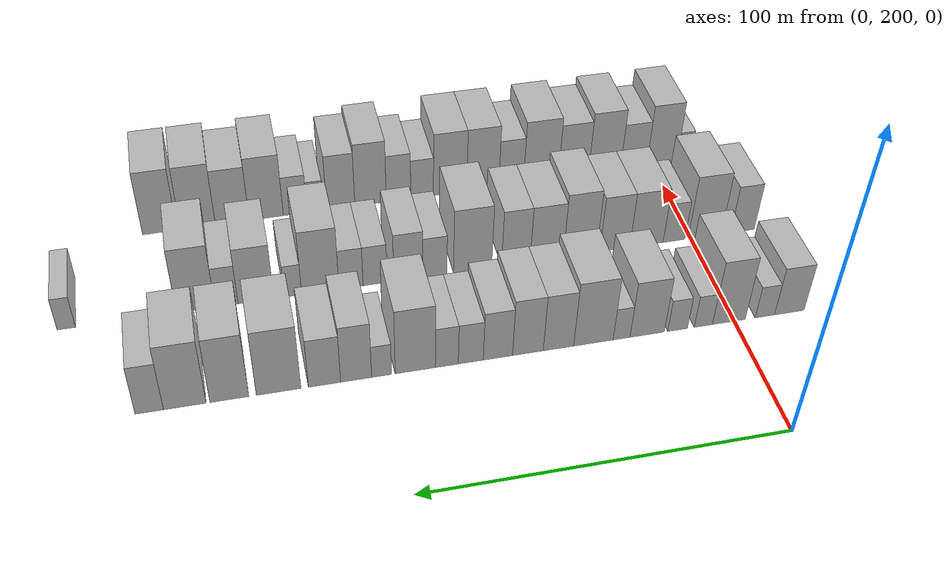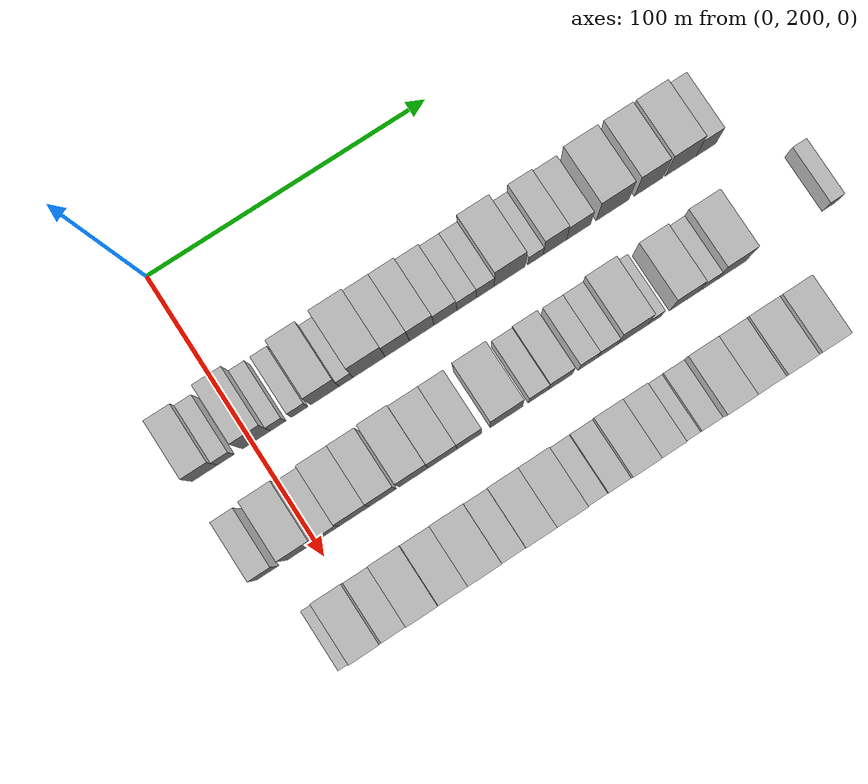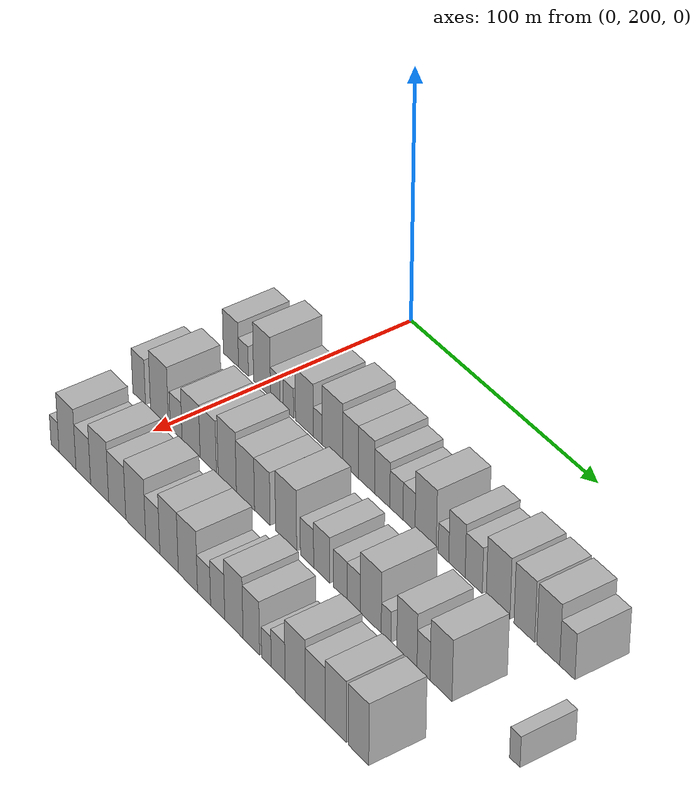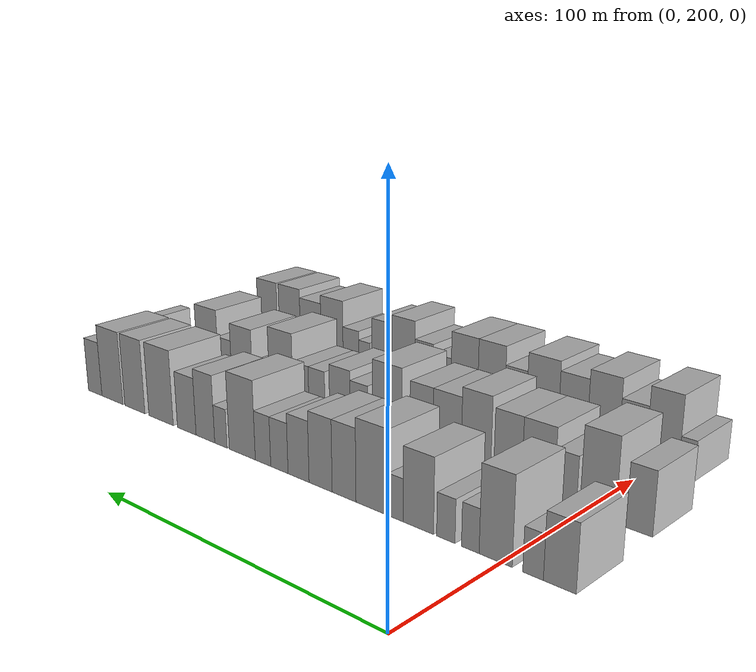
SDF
<sdf version="1.6">
 <world name="default">
  <model name="building_67">
   <static>1</static>
   <pose>50.0000 183.5622 0 0.000000 0.000000 0.000000</pose>
   <link name="link">
    <pose>0 0 9.00 0 0 0</pose>
    <collision name="collision"><geometry><box><size>20.0000 8.9231 18.0000</size></box></geometry></collision>
    <visual name="visual">
     <cast_shadows>0</cast_shadows>
     <geometry><box><size>20.0000 8.9231 18.0000</size></box></geometry>
     <material>
      <script>
       <uri>model://HANNAS_wall/materials/scripts</uri>
       <uri>model://HANNAS_wall/materials/textures</uri>
       <name>vrc/HANNAS_wall</name>
      </script>
     </material>
    </visual>
   </link>
  </model>
  <model name="building_68">
   <static>1</static>
   <pose>50.0000 190.9222 0 0.000000 0.000000 0.000000</pose>
   <link name="link">
    <pose>0 0 6.00 0 0 0</pose>
    <collision name="collision"><geometry><box><size>20.0000 5.7970 12.0000</size></box></geometry></collision>
    <visual name="visual">
     <cast_shadows>0</cast_shadows>
     <geometry><box><size>20.0000 5.7970 12.0000</size></box></geometry>
     <material>
      <script>
       <uri>model://HANNAS_wall/materials/scripts</uri>
       <uri>model://HANNAS_wall/materials/textures</uri>
       <name>vrc/HANNAS_wall</name>
      </script>
     </material>
    </visual>
   </link>
  </model>
  <model name="building_69">
   <static>1</static>
   <pose>50.0000 201.7102 0 0.000000 0.000000 0.000000</pose>
   <link name="link">
    <pose>0 0 12.00 0 0 0</pose>
    <collision name="collision"><geometry><box><size>20.0000 9.7790 24.0000</size></box></geometry></collision>
    <visual name="visual">
     <cast_shadows>0</cast_shadows>
     <geometry><box><size>20.0000 9.7790 24.0000</size></box></geometry>
     <material>
      <script>
       <uri>model://HANNAS_wall/materials/scripts</uri>
       <uri>model://HANNAS_wall/materials/textures</uri>
       <name>vrc/HANNAS_wall</name>
      </script>
     </material>
    </visual>
   </link>
  </model>
  <model name="building_70">
   <static>1</static>
   <pose>50.0000 209.2915 0 0.000000 0.000000 0.000000</pose>
   <link name="link">
    <pose>0 0 6.00 0 0 0</pose>
    <collision name="collision"><geometry><box><size>20.0000 5.3836 12.0000</size></box></geometry></collision>
    <visual name="visual">
     <cast_shadows>0</cast_shadows>
     <geometry><box><size>20.0000 5.3836 12.0000</size></box></geometry>
     <material>
      <script>
       <uri>model://HANNAS_wall/materials/scripts</uri>
       <uri>model://HANNAS_wall/materials/textures</uri>
       <name>vrc/HANNAS_wall</name>
      </script>
     </material>
    </visual>
   </link>
  </model>
  <model name="building_71">
   <static>1</static>
   <pose>50.0000 216.8826 0 0.000000 0.000000 0.000000</pose>
   <link name="link">
    <pose>0 0 6.00 0 0 0</pose>
    <collision name="collision"><geometry><box><size>20.0000 5.7985 12.0000</size></box></geometry></collision>
    <visual name="visual">
     <cast_shadows>0</cast_shadows>
     <geometry><box><size>20.0000 5.7985 12.0000</size></box></geometry>
     <material>
      <script>
       <uri>model://HANNAS_wall/materials/scripts</uri>
       <uri>model://HANNAS_wall/materials/textures</uri>
       <name>vrc/HANNAS_wall</name>
      </script>
     </material>
    </visual>
   </link>
  </model>
  <model name="building_72">
   <static>1</static>
   <pose>50.0000 225.7960 0 0.000000 0.000000 0.000000</pose>
   <link name="link">
    <pose>0 0 10.50 0 0 0</pose>
    <collision name="collision"><geometry><box><size>20.0000 10.0283 21.0000</size></box></geometry></collision>
    <visual name="visual">
     <cast_shadows>0</cast_shadows>
     <geometry><box><size>20.0000 10.0283 21.0000</size></box></geometry>
     <material>
      <script>
       <uri>model://HANNAS_wall/materials/scripts</uri>
       <uri>model://HANNAS_wall/materials/textures</uri>
       <name>vrc/HANNAS_wall</name>
      </script>
     </material>
    </visual>
   </link>
  </model>
  <model name="building_73">
   <static>1</static>
   <pose>50.0000 233.2666 0 0.000000 0.000000 0.000000</pose>
   <link name="link">
    <pose>0 0 6.00 0 0 0</pose>
    <collision name="collision"><geometry><box><size>20.0000 4.9128 12.0000</size></box></geometry></collision>
    <visual name="visual">
     <cast_shadows>0</cast_shadows>
     <geometry><box><size>20.0000 4.9128 12.0000</size></box></geometry>
     <material>
      <script>
       <uri>model://HANNAS_wall/materials/scripts</uri>
       <uri>model://HANNAS_wall/materials/textures</uri>
       <name>vrc/HANNAS_wall</name>
      </script>
     </material>
    </visual>
   </link>
  </model>
  <model name="building_74">
   <static>1</static>
   <pose>50.0000 241.4096 0 0.000000 0.000000 0.000000</pose>
   <link name="link">
    <pose>0 0 12.00 0 0 0</pose>
    <collision name="collision"><geometry><box><size>20.0000 11.3731 24.0000</size></box></geometry></collision>
    <visual name="visual">
     <cast_shadows>0</cast_shadows>
     <geometry><box><size>20.0000 11.3731 24.0000</size></box></geometry>
     <material>
      <script>
       <uri>model://HANNAS_wall/materials/scripts</uri>
       <uri>model://HANNAS_wall/materials/textures</uri>
       <name>vrc/HANNAS_wall</name>
      </script>
     </material>
    </visual>
   </link>
  </model>
  <model name="building_75">
   <static>1</static>
   <pose>50.0000 251.4400 0 0.000000 0.000000 0.000000</pose>
   <link name="link">
    <pose>0 0 10.50 0 0 0</pose>
    <collision name="collision"><geometry><box><size>20.0000 8.6877 21.0000</size></box></geometry></collision>
    <visual name="visual">
     <cast_shadows>0</cast_shadows>
     <geometry><box><size>20.0000 8.6877 21.0000</size></box></geometry>
     <material>
      <script>
       <uri>model://HANNAS_wall/materials/scripts</uri>
       <uri>model://HANNAS_wall/materials/textures</uri>
       <name>vrc/HANNAS_wall</name>
      </script>
     </material>
    </visual>
   </link>
  </model>
  <model name="building_76">
   <static>1</static>
   <pose>50.0000 260.1631 0 0.000000 0.000000 0.000000</pose>
   <link name="link">
    <pose>0 0 10.50 0 0 0</pose>
    <collision name="collision"><geometry><box><size>20.0000 8.7585 21.0000</size></box></geometry></collision>
    <visual name="visual">
     <cast_shadows>0</cast_shadows>
     <geometry><box><size>20.0000 8.7585 21.0000</size></box></geometry>
     <material>
      <script>
       <uri>model://HANNAS_wall/materials/scripts</uri>
       <uri>model://HANNAS_wall/materials/textures</uri>
       <name>vrc/HANNAS_wall</name>
      </script>
     </material>
    </visual>
   </link>
  </model>
  <model name="building_77">
   <static>1</static>
   <pose>50.0000 268.6544 0 0.000000 0.000000 0.000000</pose>
   <link name="link">
    <pose>0 0 9.00 0 0 0</pose>
    <collision name="collision"><geometry><box><size>20.0000 8.2241 18.0000</size></box></geometry></collision>
    <visual name="visual">
     <cast_shadows>0</cast_shadows>
     <geometry><box><size>20.0000 8.2241 18.0000</size></box></geometry>
     <material>
      <script>
       <uri>model://HANNAS_wall/materials/scripts</uri>
       <uri>model://HANNAS_wall/materials/textures</uri>
       <name>vrc/HANNAS_wall</name>
      </script>
     </material>
    </visual>
   </link>
  </model>
  <model name="building_78">
   <static>1</static>
   <pose>50.0000 276.2596 0 0.000000 0.000000 0.000000</pose>
   <link name="link">
    <pose>0 0 7.50 0 0 0</pose>
    <collision name="collision"><geometry><box><size>20.0000 6.9864 15.0000</size></box></geometry></collision>
    <visual name="visual">
     <cast_shadows>0</cast_shadows>
     <geometry><box><size>20.0000 6.9864 15.0000</size></box></geometry>
     <material>
      <script>
       <uri>model://HANNAS_wall/materials/scripts</uri>
       <uri>model://HANNAS_wall/materials/textures</uri>
       <name>vrc/HANNAS_wall</name>
      </script>
     </material>
    </visual>
   </link>
  </model>
  <model name="building_79">
   <static>1</static>
   <pose>50.0000 282.9434 0 0.000000 0.000000 0.000000</pose>
   <link name="link">
    <pose>0 0 7.50 0 0 0</pose>
    <collision name="collision"><geometry><box><size>20.0000 6.3812 15.0000</size></box></geometry></collision>
    <visual name="visual">
     <cast_shadows>0</cast_shadows>
     <geometry><box><size>20.0000 6.3812 15.0000</size></box></geometry>
     <material>
      <script>
       <uri>model://HANNAS_wall/materials/scripts</uri>
       <uri>model://HANNAS_wall/materials/textures</uri>
       <name>vrc/HANNAS_wall</name>
      </script>
     </material>
    </visual>
   </link>
  </model>
  <model name="building_80">
   <static>1</static>
   <pose>50.0000 291.6882 0 0.000000 0.000000 0.000000</pose>
   <link name="link">
    <pose>0 0 12.00 0 0 0</pose>
    <collision name="collision"><geometry><box><size>20.0000 11.1082 24.0000</size></box></geometry></collision>
    <visual name="visual">
     <cast_shadows>0</cast_shadows>
     <geometry><box><size>20.0000 11.1082 24.0000</size></box></geometry>
     <material>
      <script>
       <uri>model://HANNAS_wall/materials/scripts</uri>
       <uri>model://HANNAS_wall/materials/textures</uri>
       <name>vrc/HANNAS_wall</name>
      </script>
     </material>
    </visual>
   </link>
  </model>
  <model name="building_81">
   <static>1</static>
   <pose>50.0000 300.9695 0 0.000000 0.000000 0.000000</pose>
   <link name="link">
    <pose>0 0 6.00 0 0 0</pose>
    <collision name="collision"><geometry><box><size>20.0000 5.4544 12.0000</size></box></geometry></collision>
    <visual name="visual">
     <cast_shadows>0</cast_shadows>
     <geometry><box><size>20.0000 5.4544 12.0000</size></box></geometry>
     <material>
      <script>
       <uri>model://HANNAS_wall/materials/scripts</uri>
       <uri>model://HANNAS_wall/materials/textures</uri>
       <name>vrc/HANNAS_wall</name>
      </script>
     </material>
    </visual>
   </link>
  </model>
  <model name="building_82">
   <static>1</static>
   <pose>50.0000 307.9284 0 0.000000 0.000000 0.000000</pose>
   <link name="link">
    <pose>0 0 10.50 0 0 0</pose>
    <collision name="collision"><geometry><box><size>20.0000 8.4634 21.0000</size></box></geometry></collision>
    <visual name="visual">
     <cast_shadows>0</cast_shadows>
     <geometry><box><size>20.0000 8.4634 21.0000</size></box></geometry>
     <material>
      <script>
       <uri>model://HANNAS_wall/materials/scripts</uri>
       <uri>model://HANNAS_wall/materials/textures</uri>
       <name>vrc/HANNAS_wall</name>
      </script>
     </material>
    </visual>
   </link>
  </model>
  <model name="building_83">
   <static>1</static>
   <pose>50.0000 316.5279 0 0.000000 0.000000 0.000000</pose>
   <link name="link">
    <pose>0 0 9.00 0 0 0</pose>
    <collision name="collision"><geometry><box><size>20.0000 8.7357 18.0000</size></box></geometry></collision>
    <visual name="visual">
     <cast_shadows>0</cast_shadows>
     <geometry><box><size>20.0000 8.7357 18.0000</size></box></geometry>
     <material>
      <script>
       <uri>model://HANNAS_wall/materials/scripts</uri>
       <uri>model://HANNAS_wall/materials/textures</uri>
       <name>vrc/HANNAS_wall</name>
      </script>
     </material>
    </visual>
   </link>
  </model>
  <model name="building_84">
   <static>1</static>
   <pose>50.0000 328.8622 0 0.000000 0.000000 0.000000</pose>
   <link name="link">
    <pose>0 0 12.00 0 0 0</pose>
    <collision name="collision"><geometry><box><size>20.0000 11.9328 24.0000</size></box></geometry></collision>
    <visual name="visual">
     <cast_shadows>0</cast_shadows>
     <geometry><box><size>20.0000 11.9328 24.0000</size></box></geometry>
     <material>
      <script>
       <uri>model://HANNAS_wall/materials/scripts</uri>
       <uri>model://HANNAS_wall/materials/textures</uri>
       <name>vrc/HANNAS_wall</name>
      </script>
     </material>
    </visual>
   </link>
  </model>
  <model name="building_85">
   <static>1</static>
   <pose>50.0000 341.9763 0 0.000000 0.000000 0.000000</pose>
   <link name="link">
    <pose>0 0 12.00 0 0 0</pose>
    <collision name="collision"><geometry><box><size>20.0000 10.2955 24.0000</size></box></geometry></collision>
    <visual name="visual">
     <cast_shadows>0</cast_shadows>
     <geometry><box><size>20.0000 10.2955 24.0000</size></box></geometry>
     <material>
      <script>
       <uri>model://HANNAS_wall/materials/scripts</uri>
       <uri>model://HANNAS_wall/materials/textures</uri>
       <name>vrc/HANNAS_wall</name>
      </script>
     </material>
    </visual>
   </link>
  </model>
  <model name="building_86">
   <static>1</static>
   <pose>50.0000 353.7184 0 0.000000 0.000000 0.000000</pose>
   <link name="link">
    <pose>0 0 12.00 0 0 0</pose>
    <collision name="collision"><geometry><box><size>20.0000 11.1886 24.0000</size></box></geometry></collision>
    <visual name="visual">
     <cast_shadows>0</cast_shadows>
     <geometry><box><size>20.0000 11.1886 24.0000</size></box></geometry>
     <material>
      <script>
       <uri>model://HANNAS_wall/materials/scripts</uri>
       <uri>model://HANNAS_wall/materials/textures</uri>
       <name>vrc/HANNAS_wall</name>
      </script>
     </material>
    </visual>
   </link>
  </model>
  <model name="building_87">
   <static>1</static>
   <pose>50.0000 363.0064 0 0.000000 0.000000 0.000000</pose>
   <link name="link">
    <pose>0 0 9.00 0 0 0</pose>
    <collision name="collision"><geometry><box><size>20.0000 7.3875 18.0000</size></box></geometry></collision>
    <visual name="visual">
     <cast_shadows>0</cast_shadows>
     <geometry><box><size>20.0000 7.3875 18.0000</size></box></geometry>
     <material>
      <script>
       <uri>model://HANNAS_wall/materials/scripts</uri>
       <uri>model://HANNAS_wall/materials/textures</uri>
       <name>vrc/HANNAS_wall</name>
      </script>
     </material>
    </visual>
   </link>
  </model>
  <model name="building_141">
   <static>1</static>
   <pose>85.0000 183.5913 0 0.000000 0.000000 0.000000</pose>
   <link name="link">
    <pose>0 0 9.00 0 0 0</pose>
    <collision name="collision"><geometry><box><size>20.0000 7.5626 18.0000</size></box></geometry></collision>
    <visual name="visual">
     <cast_shadows>0</cast_shadows>
     <geometry><box><size>20.0000 7.5626 18.0000</size></box></geometry>
     <material>
      <script>
       <uri>model://HANNAS_wall/materials/scripts</uri>
       <uri>model://HANNAS_wall/materials/textures</uri>
       <name>vrc/HANNAS_wall</name>
      </script>
     </material>
    </visual>
   </link>
  </model>
  <model name="building_142">
   <static>1</static>
   <pose>85.0000 195.6813 0 0.000000 0.000000 0.000000</pose>
   <link name="link">
    <pose>0 0 12.00 0 0 0</pose>
    <collision name="collision"><geometry><box><size>20.0000 10.6173 24.0000</size></box></geometry></collision>
    <visual name="visual">
     <cast_shadows>0</cast_shadows>
     <geometry><box><size>20.0000 10.6173 24.0000</size></box></geometry>
     <material>
      <script>
       <uri>model://HANNAS_wall/materials/scripts</uri>
       <uri>model://HANNAS_wall/materials/textures</uri>
       <name>vrc/HANNAS_wall</name>
      </script>
     </material>
    </visual>
   </link>
  </model>
  <model name="building_143">
   <static>1</static>
   <pose>85.0000 205.4375 0 0.000000 0.000000 0.000000</pose>
   <link name="link">
    <pose>0 0 7.50 0 0 0</pose>
    <collision name="collision"><geometry><box><size>20.0000 6.8949 15.0000</size></box></geometry></collision>
    <visual name="visual">
     <cast_shadows>0</cast_shadows>
     <geometry><box><size>20.0000 6.8949 15.0000</size></box></geometry>
     <material>
      <script>
       <uri>model://HANNAS_wall/materials/scripts</uri>
       <uri>model://HANNAS_wall/materials/textures</uri>
       <name>vrc/HANNAS_wall</name>
      </script>
     </material>
    </visual>
   </link>
  </model>
  <model name="building_144">
   <static>1</static>
   <pose>85.0000 214.1202 0 0.000000 0.000000 0.000000</pose>
   <link name="link">
    <pose>0 0 10.50 0 0 0</pose>
    <collision name="collision"><geometry><box><size>20.0000 10.4705 21.0000</size></box></geometry></collision>
    <visual name="visual">
     <cast_shadows>0</cast_shadows>
     <geometry><box><size>20.0000 10.4705 21.0000</size></box></geometry>
     <material>
      <script>
       <uri>model://HANNAS_wall/materials/scripts</uri>
       <uri>model://HANNAS_wall/materials/textures</uri>
       <name>vrc/HANNAS_wall</name>
      </script>
     </material>
    </visual>
   </link>
  </model>
  <model name="building_145">
   <static>1</static>
   <pose>85.0000 224.0257 0 0.000000 0.000000 0.000000</pose>
   <link name="link">
    <pose>0 0 10.50 0 0 0</pose>
    <collision name="collision"><geometry><box><size>20.0000 9.3406 21.0000</size></box></geometry></collision>
    <visual name="visual">
     <cast_shadows>0</cast_shadows>
     <geometry><box><size>20.0000 9.3406 21.0000</size></box></geometry>
     <material>
      <script>
       <uri>model://HANNAS_wall/materials/scripts</uri>
       <uri>model://HANNAS_wall/materials/textures</uri>
       <name>vrc/HANNAS_wall</name>
      </script>
     </material>
    </visual>
   </link>
  </model>
  <model name="building_146">
   <static>1</static>
   <pose>85.0000 234.8390 0 0.000000 0.000000 0.000000</pose>
   <link name="link">
    <pose>0 0 12.00 0 0 0</pose>
    <collision name="collision"><geometry><box><size>20.0000 10.2858 24.0000</size></box></geometry></collision>
    <visual name="visual">
     <cast_shadows>0</cast_shadows>
     <geometry><box><size>20.0000 10.2858 24.0000</size></box></geometry>
     <material>
      <script>
       <uri>model://HANNAS_wall/materials/scripts</uri>
       <uri>model://HANNAS_wall/materials/textures</uri>
       <name>vrc/HANNAS_wall</name>
      </script>
     </material>
    </visual>
   </link>
  </model>
  <model name="building_147">
   <static>1</static>
   <pose>85.0000 245.0615 0 0.000000 0.000000 0.000000</pose>
   <link name="link">
    <pose>0 0 10.50 0 0 0</pose>
    <collision name="collision"><geometry><box><size>20.0000 10.1592 21.0000</size></box></geometry></collision>
    <visual name="visual">
     <cast_shadows>0</cast_shadows>
     <geometry><box><size>20.0000 10.1592 21.0000</size></box></geometry>
     <material>
      <script>
       <uri>model://HANNAS_wall/materials/scripts</uri>
       <uri>model://HANNAS_wall/materials/textures</uri>
       <name>vrc/HANNAS_wall</name>
      </script>
     </material>
    </visual>
   </link>
  </model>
  <model name="building_148">
   <static>1</static>
   <pose>85.0000 254.4789 0 0.000000 0.000000 0.000000</pose>
   <link name="link">
    <pose>0 0 10.50 0 0 0</pose>
    <collision name="collision"><geometry><box><size>20.0000 8.6756 21.0000</size></box></geometry></collision>
    <visual name="visual">
     <cast_shadows>0</cast_shadows>
     <geometry><box><size>20.0000 8.6756 21.0000</size></box></geometry>
     <material>
      <script>
       <uri>model://HANNAS_wall/materials/scripts</uri>
       <uri>model://HANNAS_wall/materials/textures</uri>
       <name>vrc/HANNAS_wall</name>
      </script>
     </material>
    </visual>
   </link>
  </model>
  <model name="building_149">
   <static>1</static>
   <pose>85.0000 267.5701 0 0.000000 0.000000 0.000000</pose>
   <link name="link">
    <pose>0 0 12.00 0 0 0</pose>
    <collision name="collision"><geometry><box><size>20.0000 11.5068 24.0000</size></box></geometry></collision>
    <visual name="visual">
     <cast_shadows>0</cast_shadows>
     <geometry><box><size>20.0000 11.5068 24.0000</size></box></geometry>
     <material>
      <script>
       <uri>model://HANNAS_wall/materials/scripts</uri>
       <uri>model://HANNAS_wall/materials/textures</uri>
       <name>vrc/HANNAS_wall</name>
      </script>
     </material>
    </visual>
   </link>
  </model>
  <model name="building_150">
   <static>1</static>
   <pose>85.0000 278.8965 0 0.000000 0.000000 0.000000</pose>
   <link name="link">
    <pose>0 0 7.50 0 0 0</pose>
    <collision name="collision"><geometry><box><size>20.0000 7.1461 15.0000</size></box></geometry></collision>
    <visual name="visual">
     <cast_shadows>0</cast_shadows>
     <geometry><box><size>20.0000 7.1461 15.0000</size></box></geometry>
     <material>
      <script>
       <uri>model://HANNAS_wall/materials/scripts</uri>
       <uri>model://HANNAS_wall/materials/textures</uri>
       <name>vrc/HANNAS_wall</name>
      </script>
     </material>
    </visual>
   </link>
  </model>
  <model name="building_151">
   <static>1</static>
   <pose>85.0000 286.7865 0 0.000000 0.000000 0.000000</pose>
   <link name="link">
    <pose>0 0 9.00 0 0 0</pose>
    <collision name="collision"><geometry><box><size>20.0000 8.6339 18.0000</size></box></geometry></collision>
    <visual name="visual">
     <cast_shadows>0</cast_shadows>
     <geometry><box><size>20.0000 8.6339 18.0000</size></box></geometry>
     <material>
      <script>
       <uri>model://HANNAS_wall/materials/scripts</uri>
       <uri>model://HANNAS_wall/materials/textures</uri>
       <name>vrc/HANNAS_wall</name>
      </script>
     </material>
    </visual>
   </link>
  </model>
  <model name="building_152">
   <static>1</static>
   <pose>85.0000 296.6159 0 0.000000 0.000000 0.000000</pose>
   <link name="link">
    <pose>0 0 7.50 0 0 0</pose>
    <collision name="collision"><geometry><box><size>20.0000 7.0249 15.0000</size></box></geometry></collision>
    <visual name="visual">
     <cast_shadows>0</cast_shadows>
     <geometry><box><size>20.0000 7.0249 15.0000</size></box></geometry>
     <material>
      <script>
       <uri>model://HANNAS_wall/materials/scripts</uri>
       <uri>model://HANNAS_wall/materials/textures</uri>
       <name>vrc/HANNAS_wall</name>
      </script>
     </material>
    </visual>
   </link>
  </model>
  <model name="building_153">
   <static>1</static>
   <pose>85.0000 303.6608 0 0.000000 0.000000 0.000000</pose>
   <link name="link">
    <pose>0 0 7.50 0 0 0</pose>
    <collision name="collision"><geometry><box><size>20.0000 7.0650 15.0000</size></box></geometry></collision>
    <visual name="visual">
     <cast_shadows>0</cast_shadows>
     <geometry><box><size>20.0000 7.0650 15.0000</size></box></geometry>
     <material>
      <script>
       <uri>model://HANNAS_wall/materials/scripts</uri>
       <uri>model://HANNAS_wall/materials/textures</uri>
       <name>vrc/HANNAS_wall</name>
      </script>
     </material>
    </visual>
   </link>
  </model>
  <model name="building_154">
   <static>1</static>
   <pose>85.0000 312.6226 0 0.000000 0.000000 0.000000</pose>
   <link name="link">
    <pose>0 0 12.00 0 0 0</pose>
    <collision name="collision"><geometry><box><size>20.0000 10.8585 24.0000</size></box></geometry></collision>
    <visual name="visual">
     <cast_shadows>0</cast_shadows>
     <geometry><box><size>20.0000 10.8585 24.0000</size></box></geometry>
     <material>
      <script>
       <uri>model://HANNAS_wall/materials/scripts</uri>
       <uri>model://HANNAS_wall/materials/textures</uri>
       <name>vrc/HANNAS_wall</name>
      </script>
     </material>
    </visual>
   </link>
  </model>
  <model name="building_155">
   <static>1</static>
   <pose>85.0000 320.5639 0 0.000000 0.000000 0.000000</pose>
   <link name="link">
    <pose>0 0 6.00 0 0 0</pose>
    <collision name="collision"><geometry><box><size>20.0000 5.0241 12.0000</size></box></geometry></collision>
    <visual name="visual">
     <cast_shadows>0</cast_shadows>
     <geometry><box><size>20.0000 5.0241 12.0000</size></box></geometry>
     <material>
      <script>
       <uri>model://HANNAS_wall/materials/scripts</uri>
       <uri>model://HANNAS_wall/materials/textures</uri>
       <name>vrc/HANNAS_wall</name>
      </script>
     </material>
    </visual>
   </link>
  </model>
  <model name="building_156">
   <static>1</static>
   <pose>85.0000 331.1961 0 0.000000 0.000000 0.000000</pose>
   <link name="link">
    <pose>0 0 10.50 0 0 0</pose>
    <collision name="collision"><geometry><box><size>20.0000 10.2403 21.0000</size></box></geometry></collision>
    <visual name="visual">
     <cast_shadows>0</cast_shadows>
     <geometry><box><size>20.0000 10.2403 21.0000</size></box></geometry>
     <material>
      <script>
       <uri>model://HANNAS_wall/materials/scripts</uri>
       <uri>model://HANNAS_wall/materials/textures</uri>
       <name>vrc/HANNAS_wall</name>
      </script>
     </material>
    </visual>
   </link>
  </model>
  <model name="building_157">
   <static>1</static>
   <pose>85.0000 339.5961 0 0.000000 0.000000 0.000000</pose>
   <link name="link">
    <pose>0 0 7.50 0 0 0</pose>
    <collision name="collision"><geometry><box><size>20.0000 6.5597 15.0000</size></box></geometry></collision>
    <visual name="visual">
     <cast_shadows>0</cast_shadows>
     <geometry><box><size>20.0000 6.5597 15.0000</size></box></geometry>
     <material>
      <script>
       <uri>model://HANNAS_wall/materials/scripts</uri>
       <uri>model://HANNAS_wall/materials/textures</uri>
       <name>vrc/HANNAS_wall</name>
      </script>
     </material>
    </visual>
   </link>
  </model>
  <model name="building_158">
   <static>1</static>
   <pose>85.0000 348.3435 0 0.000000 0.000000 0.000000</pose>
   <link name="link">
    <pose>0 0 12.00 0 0 0</pose>
    <collision name="collision"><geometry><box><size>20.0000 10.9350 24.0000</size></box></geometry></collision>
    <visual name="visual">
     <cast_shadows>0</cast_shadows>
     <geometry><box><size>20.0000 10.9350 24.0000</size></box></geometry>
     <material>
      <script>
       <uri>model://HANNAS_wall/materials/scripts</uri>
       <uri>model://HANNAS_wall/materials/textures</uri>
       <name>vrc/HANNAS_wall</name>
      </script>
     </material>
    </visual>
   </link>
  </model>
  <model name="building_159">
   <static>1</static>
   <pose>85.0000 384.3612 0 0.000000 0.000000 0.000000</pose>
   <link name="link">
    <pose>0 0 6.00 0 0 0</pose>
    <collision name="collision"><geometry><box><size>20.0000 5.0335 12.0000</size></box></geometry></collision>
    <visual name="visual">
     <cast_shadows>0</cast_shadows>
     <geometry><box><size>20.0000 5.0335 12.0000</size></box></geometry>
     <material>
      <script>
       <uri>model://HANNAS_wall/materials/scripts</uri>
       <uri>model://HANNAS_wall/materials/textures</uri>
       <name>vrc/HANNAS_wall</name>
      </script>
     </material>
    </visual>
   </link>
  </model>
  <model name="building_219">
   <static>1</static>
   <pose>120.0000 189.6527 0 0.000000 0.000000 0.000000</pose>
   <link name="link">
    <pose>0 0 6.00 0 0 0</pose>
    <collision name="collision"><geometry><box><size>20.0000 4.8545 12.0000</size></box></geometry></collision>
    <visual name="visual">
     <cast_shadows>0</cast_shadows>
     <geometry><box><size>20.0000 4.8545 12.0000</size></box></geometry>
     <material>
      <script>
       <uri>model://HANNAS_wall/materials/scripts</uri>
       <uri>model://HANNAS_wall/materials/textures</uri>
       <name>vrc/HANNAS_wall</name>
      </script>
     </material>
    </visual>
   </link>
  </model>
  <model name="building_220">
   <static>1</static>
   <pose>120.0000 197.1570 0 0.000000 0.000000 0.000000</pose>
   <link name="link">
    <pose>0 0 12.00 0 0 0</pose>
    <collision name="collision"><geometry><box><size>20.0000 10.1541 24.0000</size></box></geometry></collision>
    <visual name="visual">
     <cast_shadows>0</cast_shadows>
     <geometry><box><size>20.0000 10.1541 24.0000</size></box></geometry>
     <material>
      <script>
       <uri>model://HANNAS_wall/materials/scripts</uri>
       <uri>model://HANNAS_wall/materials/textures</uri>
       <name>vrc/HANNAS_wall</name>
      </script>
     </material>
    </visual>
   </link>
  </model>
  <model name="building_221">
   <static>1</static>
   <pose>120.0000 206.5946 0 0.000000 0.000000 0.000000</pose>
   <link name="link">
    <pose>0 0 9.00 0 0 0</pose>
    <collision name="collision"><geometry><box><size>20.0000 8.7211 18.0000</size></box></geometry></collision>
    <visual name="visual">
     <cast_shadows>0</cast_shadows>
     <geometry><box><size>20.0000 8.7211 18.0000</size></box></geometry>
     <material>
      <script>
       <uri>model://HANNAS_wall/materials/scripts</uri>
       <uri>model://HANNAS_wall/materials/textures</uri>
       <name>vrc/HANNAS_wall</name>
      </script>
     </material>
    </visual>
   </link>
  </model>
  <model name="building_222">
   <static>1</static>
   <pose>120.0000 216.2594 0 0.000000 0.000000 0.000000</pose>
   <link name="link">
    <pose>0 0 12.00 0 0 0</pose>
    <collision name="collision"><geometry><box><size>20.0000 10.6086 24.0000</size></box></geometry></collision>
    <visual name="visual">
     <cast_shadows>0</cast_shadows>
     <geometry><box><size>20.0000 10.6086 24.0000</size></box></geometry>
     <material>
      <script>
       <uri>model://HANNAS_wall/materials/scripts</uri>
       <uri>model://HANNAS_wall/materials/textures</uri>
       <name>vrc/HANNAS_wall</name>
      </script>
     </material>
    </visual>
   </link>
  </model>
  <model name="building_223">
   <static>1</static>
   <pose>120.0000 226.5346 0 0.000000 0.000000 0.000000</pose>
   <link name="link">
    <pose>0 0 10.50 0 0 0</pose>
    <collision name="collision"><geometry><box><size>20.0000 9.9417 21.0000</size></box></geometry></collision>
    <visual name="visual">
     <cast_shadows>0</cast_shadows>
     <geometry><box><size>20.0000 9.9417 21.0000</size></box></geometry>
     <material>
      <script>
       <uri>model://HANNAS_wall/materials/scripts</uri>
       <uri>model://HANNAS_wall/materials/textures</uri>
       <name>vrc/HANNAS_wall</name>
      </script>
     </material>
    </visual>
   </link>
  </model>
  <model name="building_224">
   <static>1</static>
   <pose>120.0000 237.2084 0 0.000000 0.000000 0.000000</pose>
   <link name="link">
    <pose>0 0 12.00 0 0 0</pose>
    <collision name="collision"><geometry><box><size>20.0000 11.4060 24.0000</size></box></geometry></collision>
    <visual name="visual">
     <cast_shadows>0</cast_shadows>
     <geometry><box><size>20.0000 11.4060 24.0000</size></box></geometry>
     <material>
      <script>
       <uri>model://HANNAS_wall/materials/scripts</uri>
       <uri>model://HANNAS_wall/materials/textures</uri>
       <name>vrc/HANNAS_wall</name>
      </script>
     </material>
    </visual>
   </link>
  </model>
  <model name="building_225">
   <static>1</static>
   <pose>120.0000 246.9334 0 0.000000 0.000000 0.000000</pose>
   <link name="link">
    <pose>0 0 9.00 0 0 0</pose>
    <collision name="collision"><geometry><box><size>20.0000 8.0439 18.0000</size></box></geometry></collision>
    <visual name="visual">
     <cast_shadows>0</cast_shadows>
     <geometry><box><size>20.0000 8.0439 18.0000</size></box></geometry>
     <material>
      <script>
       <uri>model://HANNAS_wall/materials/scripts</uri>
       <uri>model://HANNAS_wall/materials/textures</uri>
       <name>vrc/HANNAS_wall</name>
      </script>
     </material>
    </visual>
   </link>
  </model>
  <model name="building_226">
   <static>1</static>
   <pose>120.0000 256.1545 0 0.000000 0.000000 0.000000</pose>
   <link name="link">
    <pose>0 0 12.00 0 0 0</pose>
    <collision name="collision"><geometry><box><size>20.0000 10.3984 24.0000</size></box></geometry></collision>
    <visual name="visual">
     <cast_shadows>0</cast_shadows>
     <geometry><box><size>20.0000 10.3984 24.0000</size></box></geometry>
     <material>
      <script>
       <uri>model://HANNAS_wall/materials/scripts</uri>
       <uri>model://HANNAS_wall/materials/textures</uri>
       <name>vrc/HANNAS_wall</name>
      </script>
     </material>
    </visual>
   </link>
  </model>
  <model name="building_227">
   <static>1</static>
   <pose>120.0000 266.6581 0 0.000000 0.000000 0.000000</pose>
   <link name="link">
    <pose>0 0 12.00 0 0 0</pose>
    <collision name="collision"><geometry><box><size>20.0000 10.6087 24.0000</size></box></geometry></collision>
    <visual name="visual">
     <cast_shadows>0</cast_shadows>
     <geometry><box><size>20.0000 10.6087 24.0000</size></box></geometry>
     <material>
      <script>
       <uri>model://HANNAS_wall/materials/scripts</uri>
       <uri>model://HANNAS_wall/materials/textures</uri>
       <name>vrc/HANNAS_wall</name>
      </script>
     </material>
    </visual>
   </link>
  </model>
  <model name="building_228">
   <static>1</static>
   <pose>120.0000 275.5776 0 0.000000 0.000000 0.000000</pose>
   <link name="link">
    <pose>0 0 7.50 0 0 0</pose>
    <collision name="collision"><geometry><box><size>20.0000 7.2304 15.0000</size></box></geometry></collision>
    <visual name="visual">
     <cast_shadows>0</cast_shadows>
     <geometry><box><size>20.0000 7.2304 15.0000</size></box></geometry>
     <material>
      <script>
       <uri>model://HANNAS_wall/materials/scripts</uri>
       <uri>model://HANNAS_wall/materials/textures</uri>
       <name>vrc/HANNAS_wall</name>
      </script>
     </material>
    </visual>
   </link>
  </model>
  <model name="building_229">
   <static>1</static>
   <pose>120.0000 283.0603 0 0.000000 0.000000 0.000000</pose>
   <link name="link">
    <pose>0 0 9.00 0 0 0</pose>
    <collision name="collision"><geometry><box><size>20.0000 7.7350 18.0000</size></box></geometry></collision>
    <visual name="visual">
     <cast_shadows>0</cast_shadows>
     <geometry><box><size>20.0000 7.7350 18.0000</size></box></geometry>
     <material>
      <script>
       <uri>model://HANNAS_wall/materials/scripts</uri>
       <uri>model://HANNAS_wall/materials/textures</uri>
       <name>vrc/HANNAS_wall</name>
      </script>
     </material>
    </visual>
   </link>
  </model>
  <model name="building_230">
   <static>1</static>
   <pose>120.0000 291.8687 0 0.000000 0.000000 0.000000</pose>
   <link name="link">
    <pose>0 0 12.00 0 0 0</pose>
    <collision name="collision"><geometry><box><size>20.0000 9.8818 24.0000</size></box></geometry></collision>
    <visual name="visual">
     <cast_shadows>0</cast_shadows>
     <geometry><box><size>20.0000 9.8818 24.0000</size></box></geometry>
     <material>
      <script>
       <uri>model://HANNAS_wall/materials/scripts</uri>
       <uri>model://HANNAS_wall/materials/textures</uri>
       <name>vrc/HANNAS_wall</name>
      </script>
     </material>
    </visual>
   </link>
  </model>
  <model name="building_231">
   <static>1</static>
   <pose>120.0000 301.2374 0 0.000000 0.000000 0.000000</pose>
   <link name="link">
    <pose>0 0 10.50 0 0 0</pose>
    <collision name="collision"><geometry><box><size>20.0000 8.8555 21.0000</size></box></geometry></collision>
    <visual name="visual">
     <cast_shadows>0</cast_shadows>
     <geometry><box><size>20.0000 8.8555 21.0000</size></box></geometry>
     <material>
      <script>
       <uri>model://HANNAS_wall/materials/scripts</uri>
       <uri>model://HANNAS_wall/materials/textures</uri>
       <name>vrc/HANNAS_wall</name>
      </script>
     </material>
    </visual>
   </link>
  </model>
  <model name="building_232">
   <static>1</static>
   <pose>120.0000 309.2200 0 0.000000 0.000000 0.000000</pose>
   <link name="link">
    <pose>0 0 6.00 0 0 0</pose>
    <collision name="collision"><geometry><box><size>20.0000 5.1097 12.0000</size></box></geometry></collision>
    <visual name="visual">
     <cast_shadows>0</cast_shadows>
     <geometry><box><size>20.0000 5.1097 12.0000</size></box></geometry>
     <material>
      <script>
       <uri>model://HANNAS_wall/materials/scripts</uri>
       <uri>model://HANNAS_wall/materials/textures</uri>
       <name>vrc/HANNAS_wall</name>
      </script>
     </material>
    </visual>
   </link>
  </model>
  <model name="building_233">
   <static>1</static>
   <pose>120.0000 315.4156 0 0.000000 0.000000 0.000000</pose>
   <link name="link">
    <pose>0 0 7.50 0 0 0</pose>
    <collision name="collision"><geometry><box><size>20.0000 7.2816 15.0000</size></box></geometry></collision>
    <visual name="visual">
     <cast_shadows>0</cast_shadows>
     <geometry><box><size>20.0000 7.2816 15.0000</size></box></geometry>
     <material>
      <script>
       <uri>model://HANNAS_wall/materials/scripts</uri>
       <uri>model://HANNAS_wall/materials/textures</uri>
       <name>vrc/HANNAS_wall</name>
      </script>
     </material>
    </visual>
   </link>
  </model>
  <model name="building_234">
   <static>1</static>
   <pose>120.0000 324.3039 0 0.000000 0.000000 0.000000</pose>
   <link name="link">
    <pose>0 0 12.00 0 0 0</pose>
    <collision name="collision"><geometry><box><size>20.0000 10.4948 24.0000</size></box></geometry></collision>
    <visual name="visual">
     <cast_shadows>0</cast_shadows>
     <geometry><box><size>20.0000 10.4948 24.0000</size></box></geometry>
     <material>
      <script>
       <uri>model://HANNAS_wall/materials/scripts</uri>
       <uri>model://HANNAS_wall/materials/textures</uri>
       <name>vrc/HANNAS_wall</name>
      </script>
     </material>
    </visual>
   </link>
  </model>
  <model name="building_235">
   <static>1</static>
   <pose>120.0000 334.6920 0 0.000000 0.000000 0.000000</pose>
   <link name="link">
    <pose>0 0 10.50 0 0 0</pose>
    <collision name="collision"><geometry><box><size>20.0000 10.2815 21.0000</size></box></geometry></collision>
    <visual name="visual">
     <cast_shadows>0</cast_shadows>
     <geometry><box><size>20.0000 10.2815 21.0000</size></box></geometry>
     <material>
      <script>
       <uri>model://HANNAS_wall/materials/scripts</uri>
       <uri>model://HANNAS_wall/materials/textures</uri>
       <name>vrc/HANNAS_wall</name>
      </script>
     </material>
    </visual>
   </link>
  </model>
  <model name="building_236">
   <static>1</static>
   <pose>120.0000 345.1589 0 0.000000 0.000000 0.000000</pose>
   <link name="link">
    <pose>0 0 12.00 0 0 0</pose>
    <collision name="collision"><geometry><box><size>20.0000 10.6524 24.0000</size></box></geometry></collision>
    <visual name="visual">
     <cast_shadows>0</cast_shadows>
     <geometry><box><size>20.0000 10.6524 24.0000</size></box></geometry>
     <material>
      <script>
       <uri>model://HANNAS_wall/materials/scripts</uri>
       <uri>model://HANNAS_wall/materials/textures</uri>
       <name>vrc/HANNAS_wall</name>
      </script>
     </material>
    </visual>
   </link>
  </model>
  <model name="building_237">
   <static>1</static>
   <pose>120.0000 356.6289 0 0.000000 0.000000 0.000000</pose>
   <link name="link">
    <pose>0 0 12.00 0 0 0</pose>
    <collision name="collision"><geometry><box><size>20.0000 10.2874 24.0000</size></box></geometry></collision>
    <visual name="visual">
     <cast_shadows>0</cast_shadows>
     <geometry><box><size>20.0000 10.2874 24.0000</size></box></geometry>
     <material>
      <script>
       <uri>model://HANNAS_wall/materials/scripts</uri>
       <uri>model://HANNAS_wall/materials/textures</uri>
       <name>vrc/HANNAS_wall</name>
      </script>
     </material>
    </visual>
   </link>
  </model>
 </world>
</sdf>
